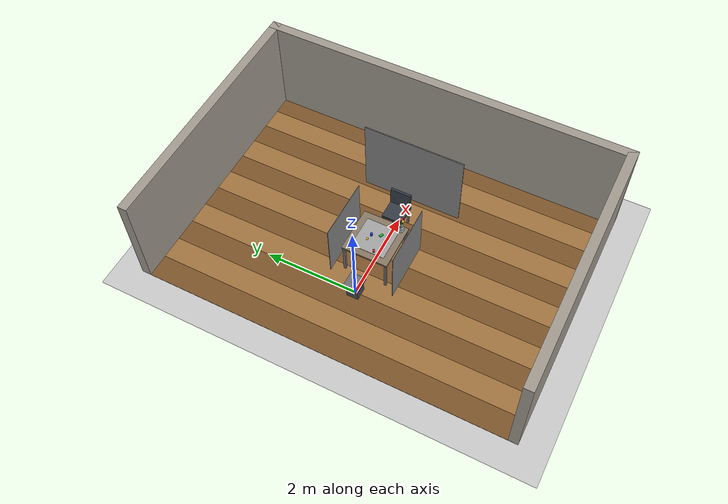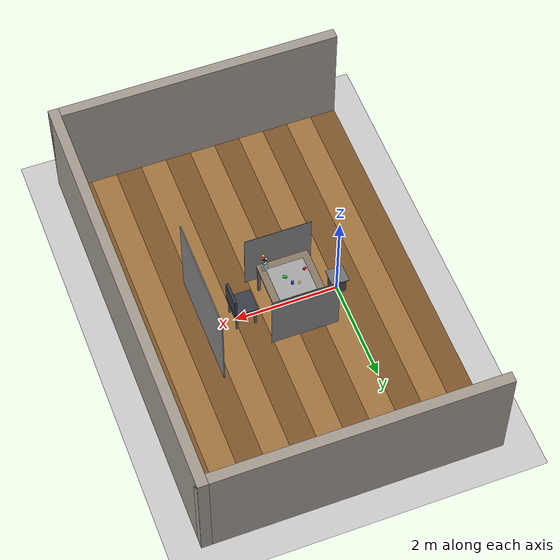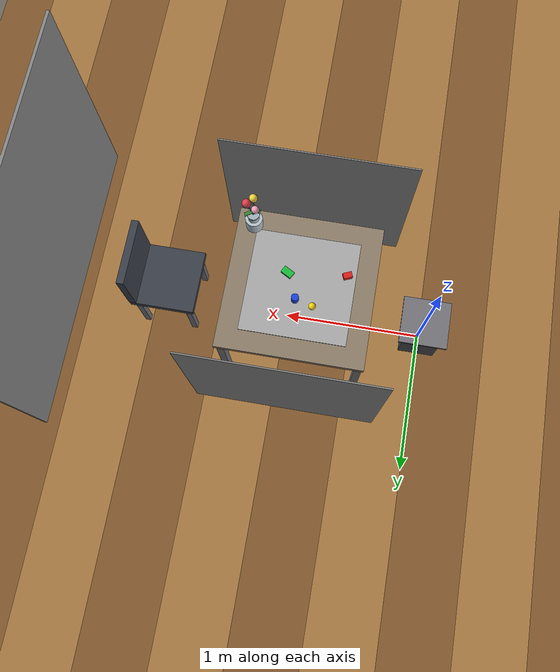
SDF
<sdf version="1.6">
 <world name="emeet_arm_workspace">
  <physics type="ode">
   <real_time_update_rate>1000</real_time_update_rate>
   <max_step_size>0.001</max_step_size>
   <real_time_factor>1.0</real_time_factor>
   <ode>
    <solver><type>quick</type><iters>50</iters><sor>1.3</sor></solver>
    <constraints>
     <cfm>0</cfm>
     <erp>0.2</erp>
     <contact_max_correcting_vel>100</contact_max_correcting_vel>
     <contact_surface_layer>0.001</contact_surface_layer>
    </constraints>
   </ode>
  </physics>
  <scene>
   <shadows>false</shadows>
   <grid>false</grid>
   <ambient>0.50 0.50 0.50 1</ambient>
   <background>0.20 0.20 0.20 1</background>
  </scene>
  <include><uri>model://ground_plane</uri></include>
  <model name="wood_floor">
   <static>true</static>
   <link name="p0">
    <pose>-1.25 0 0.004 0 0 0</pose>
    <visual name="v">
     <geometry><box><size>0.50 8.0 0.008</size></box></geometry>
     <material>
      <ambient>0.48 0.32 0.16 1</ambient>
      <diffuse>0.50 0.34 0.17 1</diffuse>
      <specular>0.15 0.10 0.06 25</specular>
     </material>
    </visual>
   </link>
   <link name="p1">
    <pose>-0.75 0 0.004 0 0 0</pose>
    <visual name="v">
     <geometry><box><size>0.50 8.0 0.008</size></box></geometry>
     <material>
      <ambient>0.62 0.44 0.24 1</ambient>
      <diffuse>0.64 0.46 0.25 1</diffuse>
      <specular>0.18 0.12 0.07 25</specular>
     </material>
    </visual>
   </link>
   <link name="p2">
    <pose>-0.25 0 0.004 0 0 0</pose>
    <visual name="v">
     <geometry><box><size>0.50 8.0 0.008</size></box></geometry>
     <material>
      <ambient>0.48 0.32 0.16 1</ambient>
      <diffuse>0.50 0.34 0.17 1</diffuse>
      <specular>0.15 0.10 0.06 25</specular>
     </material>
    </visual>
   </link>
   <link name="p3">
    <pose>0.25 0 0.004 0 0 0</pose>
    <visual name="v">
     <geometry><box><size>0.50 8.0 0.008</size></box></geometry>
     <material>
      <ambient>0.62 0.44 0.24 1</ambient>
      <diffuse>0.64 0.46 0.25 1</diffuse>
      <specular>0.18 0.12 0.07 25</specular>
     </material>
    </visual>
   </link>
   <link name="p4">
    <pose>0.75 0 0.004 0 0 0</pose>
    <visual name="v">
     <geometry><box><size>0.50 8.0 0.008</size></box></geometry>
     <material>
      <ambient>0.48 0.32 0.16 1</ambient>
      <diffuse>0.50 0.34 0.17 1</diffuse>
      <specular>0.15 0.10 0.06 25</specular>
     </material>
    </visual>
   </link>
   <link name="p5">
    <pose>1.25 0 0.004 0 0 0</pose>
    <visual name="v">
     <geometry><box><size>0.50 8.0 0.008</size></box></geometry>
     <material>
      <ambient>0.62 0.44 0.24 1</ambient>
      <diffuse>0.64 0.46 0.25 1</diffuse>
      <specular>0.18 0.12 0.07 25</specular>
     </material>
    </visual>
   </link>
   <link name="p6">
    <pose>1.75 0 0.004 0 0 0</pose>
    <visual name="v">
     <geometry><box><size>0.50 8.0 0.008</size></box></geometry>
     <material>
      <ambient>0.48 0.32 0.16 1</ambient>
      <diffuse>0.50 0.34 0.17 1</diffuse>
      <specular>0.15 0.10 0.06 25</specular>
     </material>
    </visual>
   </link>
   <link name="p7">
    <pose>2.25 0 0.004 0 0 0</pose>
    <visual name="v">
     <geometry><box><size>0.50 8.0 0.008</size></box></geometry>
     <material>
      <ambient>0.62 0.44 0.24 1</ambient>
      <diffuse>0.64 0.46 0.25 1</diffuse>
      <specular>0.18 0.12 0.07 25</specular>
     </material>
    </visual>
   </link>
   <link name="p8">
    <pose>2.75 0 0.004 0 0 0</pose>
    <visual name="v">
     <geometry><box><size>0.50 8.0 0.008</size></box></geometry>
     <material>
      <ambient>0.48 0.32 0.16 1</ambient>
      <diffuse>0.50 0.34 0.17 1</diffuse>
      <specular>0.15 0.10 0.06 25</specular>
     </material>
    </visual>
   </link>
   <link name="p9">
    <pose>3.25 0 0.004 0 0 0</pose>
    <visual name="v">
     <geometry><box><size>0.50 8.0 0.008</size></box></geometry>
     <material>
      <ambient>0.62 0.44 0.24 1</ambient>
      <diffuse>0.64 0.46 0.25 1</diffuse>
      <specular>0.18 0.12 0.07 25</specular>
     </material>
    </visual>
   </link>
   <link name="p10">
    <pose>3.75 0 0.004 0 0 0</pose>
    <visual name="v">
     <geometry><box><size>0.50 8.0 0.008</size></box></geometry>
     <material>
      <ambient>0.48 0.32 0.16 1</ambient>
      <diffuse>0.50 0.34 0.17 1</diffuse>
      <specular>0.15 0.10 0.06 25</specular>
     </material>
    </visual>
   </link>
  </model>
  <light type="directional" name="overhead_light">
   <pose>0.75 0 3.0 0 0.1 0</pose>
   <diffuse>0.92 0.92 0.88 1</diffuse>
   <specular>0.3 0.3 0.3 1</specular>
   <direction>0 0 -1</direction>
   <cast_shadows>false</cast_shadows>
  </light>
  <light type="point" name="fill_light">
   <pose>-0.3 0.5 1.2 0 0 0</pose>
   <diffuse>0.55 0.55 0.60 1</diffuse>
   <specular>0.1 0.1 0.1 1</specular>
   <attenuation>
    <range>5</range>
    <constant>0.3</constant>
    <linear>0.1</linear>
    <quadratic>0.01</quadratic>
   </attenuation>
   <cast_shadows>false</cast_shadows>
  </light>
  <model name="arm_riser">
   <static>true</static>
   <link name="column">
    <pose>0 0 0.19 0 0 0</pose>
    <collision name="col"><geometry><box><size>0.26 0.26 0.38</size></box></geometry></collision>
    <visual name="vis">
     <geometry><box><size>0.26 0.26 0.38</size></box></geometry>
     <material>
      <ambient>0.26 0.27 0.29 1</ambient>
      <diffuse>0.28 0.29 0.31 1</diffuse>
      <specular>0.10 0.10 0.12 15</specular>
     </material>
    </visual>
   </link>
   <link name="top_plate">
    <pose>0 0 0.39 0 0 0</pose>
    <collision name="col"><geometry><box><size>0.34 0.34 0.02</size></box></geometry></collision>
    <visual name="vis">
     <geometry><box><size>0.34 0.34 0.02</size></box></geometry>
     <material>
      <ambient>0.42 0.42 0.44 1</ambient>
      <diffuse>0.44 0.44 0.46 1</diffuse>
      <specular>0.15 0.15 0.16 25</specular>
     </material>
    </visual>
   </link>
  </model>
  <model name="workbench">
   <static>true</static>
   <link name="surface">
    <pose>0.90 0 0.73 0 0 0</pose>
    <collision name="col"><geometry><box><size>1.00 1.00 0.04</size></box></geometry></collision>
    <visual name="vis">
     <geometry><box><size>1.00 1.00 0.04</size></box></geometry>
     <material>
      <ambient>0.52 0.46 0.38 1</ambient>
      <diffuse>0.54 0.48 0.40 1</diffuse>
      <specular>0.06 0.05 0.04 8</specular>
     </material>
    </visual>
   </link>
   <link name="leg_fl">
    <pose>0.435 -0.455 0.355 0 0 0</pose>
    <collision name="col"><geometry><box><size>0.05 0.05 0.71</size></box></geometry></collision>
    <visual name="vis">
     <geometry><box><size>0.05 0.05 0.71</size></box></geometry>
     <material><ambient>0.45 0.45 0.45 1</ambient><diffuse>0.45 0.45 0.45 1</diffuse></material>
    </visual>
   </link>
   <link name="leg_fr">
    <pose>0.435  0.455 0.355 0 0 0</pose>
    <collision name="col"><geometry><box><size>0.05 0.05 0.71</size></box></geometry></collision>
    <visual name="vis">
     <geometry><box><size>0.05 0.05 0.71</size></box></geometry>
     <material><ambient>0.45 0.45 0.45 1</ambient><diffuse>0.45 0.45 0.45 1</diffuse></material>
    </visual>
   </link>
   <link name="leg_bl">
    <pose>1.365 -0.455 0.355 0 0 0</pose>
    <collision name="col"><geometry><box><size>0.05 0.05 0.71</size></box></geometry></collision>
    <visual name="vis">
     <geometry><box><size>0.05 0.05 0.71</size></box></geometry>
     <material><ambient>0.45 0.45 0.45 1</ambient><diffuse>0.45 0.45 0.45 1</diffuse></material>
    </visual>
   </link>
   <link name="leg_br">
    <pose>1.365  0.455 0.355 0 0 0</pose>
    <collision name="col"><geometry><box><size>0.05 0.05 0.71</size></box></geometry></collision>
    <visual name="vis">
     <geometry><box><size>0.05 0.05 0.71</size></box></geometry>
     <material><ambient>0.45 0.45 0.45 1</ambient><diffuse>0.45 0.45 0.45 1</diffuse></material>
    </visual>
   </link>
  </model>
  <model name="inspection_plate">
   <static>true</static>
   <pose>0.90 0 0.753 0 0 0</pose>
   <link name="link">
    <collision name="col"><geometry><box><size>0.72 0.72 0.005</size></box></geometry></collision>
    <visual name="vis">
     <geometry><box><size>0.72 0.72 0.005</size></box></geometry>
     <material>
      <ambient>0.65 0.65 0.65 1</ambient>
      <diffuse>0.65 0.65 0.65 1</diffuse>
      <specular>0.03 0.03 0.03 5</specular>
     </material>
    </visual>
   </link>
  </model>
  <model name="cloth_back">
   <static>true</static>
   <pose>2.60 0 0.90 0 0 0</pose>
   <link name="link">
    <collision name="col"><geometry><box><size>0.02 2.20 1.80</size></box></geometry></collision>
    <visual name="vis">
     <geometry><box><size>0.02 2.20 1.80</size></box></geometry>
     <material>
      <ambient>0.52 0.52 0.52 1</ambient>
      <diffuse>0.52 0.52 0.52 1</diffuse>
      <specular>0.02 0.02 0.02 2</specular>
     </material>
    </visual>
   </link>
  </model>
  <model name="cloth_left">
   <static>true</static>
   <pose>0.90 -0.70 0.65 0 0 0</pose>
   <link name="link">
    <collision name="col"><geometry><box><size>1.30 0.01 1.30</size></box></geometry></collision>
    <visual name="vis">
     <geometry><box><size>1.30 0.01 1.30</size></box></geometry>
     <material>
      <ambient>0.52 0.52 0.52 1</ambient>
      <diffuse>0.52 0.52 0.52 1</diffuse>
      <specular>0.02 0.02 0.02 2</specular>
     </material>
    </visual>
   </link>
  </model>
  <model name="cloth_right">
   <static>true</static>
   <pose>0.90 0.70 0.65 0 0 0</pose>
   <link name="link">
    <collision name="col"><geometry><box><size>1.30 0.01 1.30</size></box></geometry></collision>
    <visual name="vis">
     <geometry><box><size>1.30 0.01 1.30</size></box></geometry>
     <material>
      <ambient>0.52 0.52 0.52 1</ambient>
      <diffuse>0.52 0.52 0.52 1</diffuse>
      <specular>0.02 0.02 0.02 2</specular>
     </material>
    </visual>
   </link>
  </model>
  <model name="flower_vase">
   <static>true</static>
   <link name="foot">
    <pose>1.28 -0.38 0.760 0 0 0</pose>
    <collision name="col">
     <geometry><cylinder><radius>0.038</radius><length>0.020</length></cylinder></geometry>
    </collision>
    <visual name="vis">
     <geometry><cylinder><radius>0.038</radius><length>0.020</length></cylinder></geometry>
     <material>
      <ambient>0.62 0.68 0.70 1</ambient>
      <diffuse>0.66 0.72 0.74 1</diffuse>
      <specular>0.45 0.48 0.50 60</specular>
     </material>
    </visual>
   </link>
   <link name="belly">
    <pose>1.28 -0.38 0.825 0 0 0</pose>
    <collision name="col">
     <geometry><cylinder><radius>0.058</radius><length>0.110</length></cylinder></geometry>
    </collision>
    <visual name="vis">
     <geometry><cylinder><radius>0.058</radius><length>0.110</length></cylinder></geometry>
     <material>
      <ambient>0.66 0.72 0.75 1</ambient>
      <diffuse>0.70 0.76 0.79 1</diffuse>
      <specular>0.50 0.53 0.55 70</specular>
     </material>
    </visual>
   </link>
   <link name="neck">
    <pose>1.28 -0.38 0.910 0 0 0</pose>
    <collision name="col">
     <geometry><cylinder><radius>0.036</radius><length>0.060</length></cylinder></geometry>
    </collision>
    <visual name="vis">
     <geometry><cylinder><radius>0.036</radius><length>0.060</length></cylinder></geometry>
     <material>
      <ambient>0.66 0.72 0.75 1</ambient>
      <diffuse>0.70 0.76 0.79 1</diffuse>
      <specular>0.50 0.53 0.55 70</specular>
     </material>
    </visual>
   </link>
   <link name="rim">
    <pose>1.28 -0.38 0.946 0 0 0</pose>
    <visual name="vis">
     <geometry><cylinder><radius>0.042</radius><length>0.012</length></cylinder></geometry>
     <material>
      <ambient>0.58 0.65 0.68 1</ambient>
      <diffuse>0.62 0.69 0.72 1</diffuse>
      <specular>0.50 0.53 0.55 70</specular>
     </material>
    </visual>
   </link>
   <link name="stem_a">
    <pose>1.2985 -0.3800 1.0230 0 0.22 0</pose>
    <visual name="vis">
     <geometry><cylinder><radius>0.0035</radius><length>0.170</length></cylinder></geometry>
     <material><ambient>0.16 0.40 0.14 1</ambient><diffuse>0.18 0.45 0.16 1</diffuse></material>
    </visual>
   </link>
   <link name="stem_b">
    <pose>1.2800 -0.4019 1.0221 0.26 0 0</pose>
    <visual name="vis">
     <geometry><cylinder><radius>0.0035</radius><length>0.170</length></cylinder></geometry>
     <material><ambient>0.16 0.40 0.14 1</ambient><diffuse>0.18 0.45 0.16 1</diffuse></material>
    </visual>
   </link>
   <link name="stem_c">
    <pose>1.2667 -0.3631 1.0222 -0.20 -0.16 0</pose>
    <visual name="vis">
     <geometry><cylinder><radius>0.0035</radius><length>0.170</length></cylinder></geometry>
     <material><ambient>0.16 0.40 0.14 1</ambient><diffuse>0.18 0.45 0.16 1</diffuse></material>
    </visual>
   </link>
   <link name="bloom_a">
    <pose>1.3171 -0.3800 1.1059 0 0 0</pose>
    <visual name="vis">
     <geometry><sphere><radius>0.030</radius></sphere></geometry>
     <material>
      <ambient>0.80 0.20 0.26 1</ambient>
      <diffuse>0.86 0.24 0.30 1</diffuse>
      <specular>0.20 0.08 0.10 12</specular>
     </material>
    </visual>
   </link>
   <link name="bloom_b">
    <pose>1.2800 -0.4237 1.1043 0 0 0</pose>
    <visual name="vis">
     <geometry><sphere><radius>0.028</radius></sphere></geometry>
     <material>
      <ambient>0.92 0.78 0.20 1</ambient>
      <diffuse>0.96 0.82 0.24 1</diffuse>
      <specular>0.25 0.20 0.06 12</specular>
     </material>
    </visual>
   </link>
   <link name="bloom_c">
    <pose>1.2535 -0.3462 1.1045 0 0 0</pose>
    <visual name="vis">
     <geometry><sphere><radius>0.026</radius></sphere></geometry>
     <material>
      <ambient>0.90 0.58 0.68 1</ambient>
      <diffuse>0.94 0.62 0.72 1</diffuse>
      <specular>0.22 0.14 0.16 12</specular>
     </material>
    </visual>
   </link>
   <link name="leaf_a">
    <pose>1.3050 -0.3700 0.985 0 0.55 0.30</pose>
    <visual name="vis">
     <geometry><box><size>0.070 0.026 0.005</size></box></geometry>
     <material><ambient>0.18 0.42 0.16 1</ambient><diffuse>0.20 0.48 0.18 1</diffuse></material>
    </visual>
   </link>
   <link name="leaf_b">
    <pose>1.2600 -0.3980 0.998 0 -0.62 -0.40</pose>
    <visual name="vis">
     <geometry><box><size>0.062 0.024 0.005</size></box></geometry>
     <material><ambient>0.18 0.42 0.16 1</ambient><diffuse>0.20 0.48 0.18 1</diffuse></material>
    </visual>
   </link>
  </model>
  <model name="guest_chair">
   <static>true</static>
   <link name="seat">
    <pose>1.85 0 0.455 0 0 0</pose>
    <collision name="col"><geometry><box><size>0.45 0.45 0.05</size></box></geometry></collision>
    <visual name="vis">
     <geometry><box><size>0.45 0.45 0.05</size></box></geometry>
     <material>
      <ambient>0.20 0.22 0.26 1</ambient>
      <diffuse>0.22 0.24 0.28 1</diffuse>
      <specular>0.03 0.03 0.04 5</specular>
     </material>
    </visual>
   </link>
   <link name="backrest">
    <pose>2.055 0 0.690 0 0 0</pose>
    <collision name="col"><geometry><box><size>0.05 0.45 0.42</size></box></geometry></collision>
    <visual name="vis">
     <geometry><box><size>0.05 0.45 0.42</size></box></geometry>
     <material>
      <ambient>0.20 0.22 0.26 1</ambient>
      <diffuse>0.22 0.24 0.28 1</diffuse>
      <specular>0.03 0.03 0.04 5</specular>
     </material>
    </visual>
   </link>
   <link name="leg_fl">
    <pose>1.67 -0.19 0.2275 0 0 0</pose>
    <collision name="col"><geometry><box><size>0.04 0.04 0.455</size></box></geometry></collision>
    <visual name="vis">
     <geometry><box><size>0.04 0.04 0.455</size></box></geometry>
     <material><ambient>0.42 0.42 0.44 1</ambient><diffuse>0.44 0.44 0.46 1</diffuse></material>
    </visual>
   </link>
   <link name="leg_fr">
    <pose>1.67  0.19 0.2275 0 0 0</pose>
    <collision name="col"><geometry><box><size>0.04 0.04 0.455</size></box></geometry></collision>
    <visual name="vis">
     <geometry><box><size>0.04 0.04 0.455</size></box></geometry>
     <material><ambient>0.42 0.42 0.44 1</ambient><diffuse>0.44 0.44 0.46 1</diffuse></material>
    </visual>
   </link>
   <link name="leg_bl">
    <pose>2.03 -0.19 0.2275 0 0 0</pose>
    <collision name="col"><geometry><box><size>0.04 0.04 0.455</size></box></geometry></collision>
    <visual name="vis">
     <geometry><box><size>0.04 0.04 0.455</size></box></geometry>
     <material><ambient>0.42 0.42 0.44 1</ambient><diffuse>0.44 0.44 0.46 1</diffuse></material>
    </visual>
   </link>
   <link name="leg_br">
    <pose>2.03  0.19 0.2275 0 0 0</pose>
    <collision name="col"><geometry><box><size>0.04 0.04 0.455</size></box></geometry></collision>
    <visual name="vis">
     <geometry><box><size>0.04 0.04 0.455</size></box></geometry>
     <material><ambient>0.42 0.42 0.44 1</ambient><diffuse>0.44 0.44 0.46 1</diffuse></material>
    </visual>
   </link>
  </model>
  <model name="wall_back">
   <static>true</static>
   <link name="base">
    <pose>4.00 0 1.10 0 0 0</pose>
    <collision name="col"><geometry><box><size>0.20 8.20 2.20</size></box></geometry></collision>
    <visual name="vis">
     <geometry><box><size>0.20 8.20 2.20</size></box></geometry>
     <material>
      <ambient>0.64 0.61 0.57 1</ambient>
      <diffuse>0.64 0.61 0.57 1</diffuse>
      <specular>0.08 0.08 0.07 10</specular>
     </material>
    </visual>
   </link>
  </model>
  <model name="wall_left">
   <static>true</static>
   <link name="base">
    <pose>1.30 -4.00 1.10 0 0 0</pose>
    <collision name="col"><geometry><box><size>5.60 0.20 2.20</size></box></geometry></collision>
    <visual name="vis">
     <geometry><box><size>5.60 0.20 2.20</size></box></geometry>
     <material>
      <ambient>0.64 0.61 0.57 1</ambient>
      <diffuse>0.64 0.61 0.57 1</diffuse>
      <specular>0.08 0.08 0.07 10</specular>
     </material>
    </visual>
   </link>
  </model>
  <model name="wall_right">
   <static>true</static>
   <link name="base">
    <pose>1.30 4.00 1.10 0 0 0</pose>
    <collision name="col"><geometry><box><size>5.60 0.20 2.20</size></box></geometry></collision>
    <visual name="vis">
     <geometry><box><size>5.60 0.20 2.20</size></box></geometry>
     <material>
      <ambient>0.64 0.61 0.57 1</ambient>
      <diffuse>0.64 0.61 0.57 1</diffuse>
      <specular>0.08 0.08 0.07 10</specular>
     </material>
    </visual>
   </link>
  </model>
  <model name="obj_box_red">
   <static>false</static>
   <pose>0.60 -0.12 0.77 0 0 0.4</pose>
   <link name="link">
    <inertial><mass>0.1</mass><inertia><ixx>1e-4</ixx><iyy>1e-4</iyy><izz>1e-4</izz></inertia></inertial>
    <collision name="col"><geometry><box><size>0.06 0.04 0.04</size></box></geometry></collision>
    <visual name="vis">
     <geometry><box><size>0.06 0.04 0.04</size></box></geometry>
     <material>
      <ambient>0.85 0.12 0.10 1</ambient>
      <diffuse>0.85 0.12 0.10 1</diffuse>
      <specular>0.3 0.1 0.1 20</specular>
     </material>
    </visual>
   </link>
  </model>
  <model name="obj_cylinder_blue">
   <static>false</static>
   <pose>0.92 0.10 0.785 0 0 0</pose>
   <link name="link">
    <inertial><mass>0.15</mass><inertia><ixx>1e-4</ixx><iyy>1e-4</iyy><izz>5e-5</izz></inertia></inertial>
    <collision name="col">
     <geometry><cylinder><radius>0.025</radius><length>0.07</length></cylinder></geometry>
    </collision>
    <visual name="vis">
     <geometry><cylinder><radius>0.025</radius><length>0.07</length></cylinder></geometry>
     <material>
      <ambient>0.10 0.25 0.85 1</ambient>
      <diffuse>0.10 0.25 0.85 1</diffuse>
      <specular>0.4 0.4 0.7 40</specular>
     </material>
    </visual>
   </link>
  </model>
  <model name="obj_box_green">
   <static>false</static>
   <pose>1.00 -0.08 0.7625 0 0 -0.5</pose>
   <link name="link">
    <inertial><mass>0.08</mass><inertia><ixx>5e-5</ixx><iyy>5e-5</iyy><izz>5e-5</izz></inertia></inertial>
    <collision name="col"><geometry><box><size>0.08 0.05 0.025</size></box></geometry></collision>
    <visual name="vis">
     <geometry><box><size>0.08 0.05 0.025</size></box></geometry>
     <material>
      <ambient>0.10 0.72 0.22 1</ambient>
      <diffuse>0.10 0.72 0.22 1</diffuse>
      <specular>0.2 0.4 0.2 15</specular>
     </material>
    </visual>
   </link>
  </model>
  <model name="obj_sphere_yellow">
   <static>false</static>
   <pose>0.80 0.13 0.775 0 0 0</pose>
   <link name="link">
    <inertial><mass>0.05</mass><inertia><ixx>2e-5</ixx><iyy>2e-5</iyy><izz>2e-5</izz></inertia></inertial>
    <collision name="col"><geometry><sphere><radius>0.025</radius></sphere></geometry></collision>
    <visual name="vis">
     <geometry><sphere><radius>0.025</radius></sphere></geometry>
     <material>
      <ambient>0.95 0.82 0.05 1</ambient>
      <diffuse>0.95 0.82 0.05 1</diffuse>
      <specular>0.5 0.5 0.1 50</specular>
     </material>
    </visual>
   </link>
  </model>
 </world>
</sdf>
